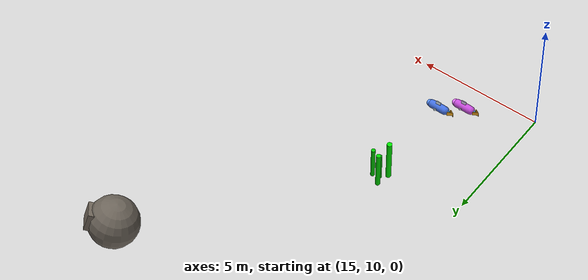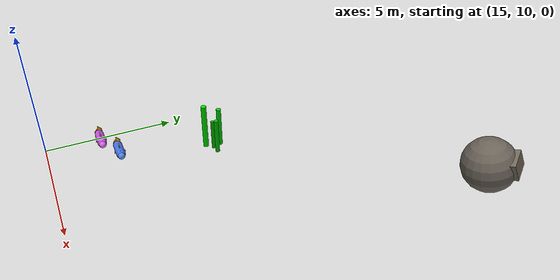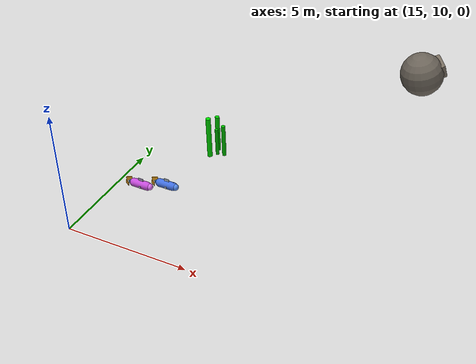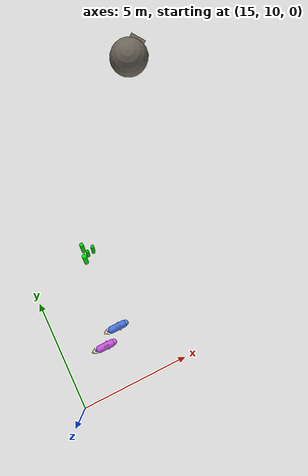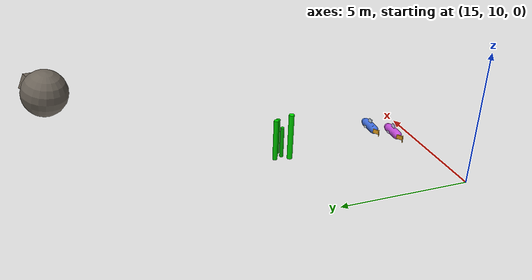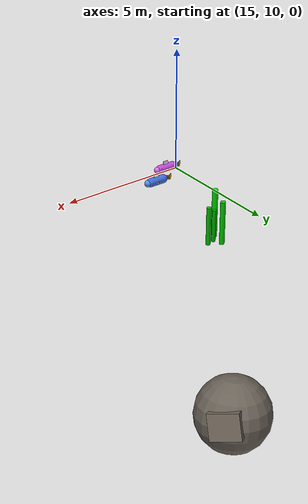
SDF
<sdf version="1.9">
 <world name="ocean_world">
  <model name="rock6">
   <static>true</static>
   <pose>24 24 1.55 0.1 -0.2 0.3</pose>
   <link name="link">
    <inertial><mass>400</mass></inertial>
    <collision name="c1"><geometry><sphere><radius>0.95</radius></sphere></geometry></collision>
    <collision name="c2">
     <pose>0.5 0.15 0.1 0 0.2 0</pose>
     <geometry><box><size>0.95 0.78 0.66</size></box></geometry>
    </collision>
    <collision name="c3">
     <pose>-0.35 -0.2 0.2 0.1 0.4 0</pose>
     <geometry><cylinder><radius>0.34</radius><length>0.82</length></cylinder></geometry>
    </collision>
    <visual name="v1">
     <geometry><sphere><radius>0.98</radius></sphere></geometry>
     <material><ambient>0.42 0.39 0.35 1</ambient><diffuse>0.42 0.39 0.35 1</diffuse></material>
    </visual>
    <visual name="v2">
     <pose>0.48 0.18 0.08 0.2 -0.1 0.3</pose>
     <geometry><box><size>1.00 0.80 0.68</size></box></geometry>
     <material><ambient>0.46 0.42 0.37 1</ambient><diffuse>0.46 0.42 0.37 1</diffuse></material>
    </visual>
    <visual name="v3">
     <pose>-0.35 -0.2 0.22 0.2 0.5 0.1</pose>
     <geometry><cylinder><radius>0.36</radius><length>0.80</length></cylinder></geometry>
     <material><ambient>0.38 0.35 0.32 1</ambient><diffuse>0.38 0.35 0.32 1</diffuse></material>
    </visual>
   </link>
  </model>
  <model name="seaweed33">
   <static>false</static>
   <pose>18.00 16.00 1.10 0 0 0</pose>
   <link name="body33">
    <gravity>false</gravity>
    <inertial><mass>1</mass></inertial>
    <visual name="visual">
     <geometry><cylinder><radius>0.07</radius><length>1.2</length></cylinder></geometry>
     <material><ambient>0 0.72 0 1</ambient><diffuse>0 0.72 0 1</diffuse></material>
    </visual>
   </link>
   <plugin filename="/home/kousik/fish_ai_plugin/build/libFishAI.so" name="FishAI"/>
  </model>
  <model name="seaweed34">
   <static>false</static>
   <pose>18.28 16.06 1.20 0 0 0</pose>
   <link name="body34">
    <gravity>false</gravity>
    <inertial><mass>1</mass></inertial>
    <visual name="visual">
     <geometry><cylinder><radius>0.08</radius><length>1.4</length></cylinder></geometry>
     <material><ambient>0 0.76 0 1</ambient><diffuse>0 0.76 0 1</diffuse></material>
    </visual>
   </link>
   <plugin filename="/home/kousik/fish_ai_plugin/build/libFishAI.so" name="FishAI"/>
  </model>
  <model name="seaweed35">
   <static>false</static>
   <pose>17.88 16.30 1.30 0 0 0</pose>
   <link name="body35">
    <gravity>false</gravity>
    <inertial><mass>1</mass></inertial>
    <visual name="visual">
     <geometry><cylinder><radius>0.09</radius><length>1.6</length></cylinder></geometry>
     <material><ambient>0 0.82 0 1</ambient><diffuse>0 0.82 0 1</diffuse></material>
    </visual>
   </link>
   <plugin filename="/home/kousik/fish_ai_plugin/build/libFishAI.so" name="FishAI"/>
  </model>
  <model name="seaweed36">
   <static>false</static>
   <pose>17.78 15.76 1.40 0 0 0</pose>
   <link name="body36">
    <gravity>false</gravity>
    <inertial><mass>1</mass></inertial>
    <visual name="visual">
     <geometry><cylinder><radius>0.10</radius><length>1.8</length></cylinder></geometry>
     <material><ambient>0 0.88 0 1</ambient><diffuse>0 0.88 0 1</diffuse></material>
    </visual>
   </link>
   <plugin filename="/home/kousik/fish_ai_plugin/build/libFishAI.so" name="FishAI"/>
  </model>
  <model name="fish5">
   <static>false</static>
   <pose>17.0 12.0 1.40 0 0 0</pose>
   <link name="body5">
    <gravity>false</gravity>
    <inertial><mass>5</mass></inertial>
    <collision name="body_collision">
     <pose>0 0 0 0 1.5708 0</pose>
     <geometry><capsule><radius>0.16</radius><length>0.58</length></capsule></geometry>
    </collision>
    <visual name="body_visual">
     <pose>0 0 0 0 1.5708 0</pose>
     <geometry><capsule><radius>0.16</radius><length>0.58</length></capsule></geometry>
     <material><ambient>0.78 0.30 0.86 1</ambient><diffuse>0.78 0.30 0.86 1</diffuse></material>
    </visual>
    <visual name="head_visual">
     <pose>0.38 0 0 0 0 0</pose>
     <geometry><sphere><radius>0.13</radius></sphere></geometry>
     <material><ambient>0.88 0.44 0.96 1</ambient><diffuse>0.88 0.44 0.96 1</diffuse></material>
    </visual>
    <visual name="eye_left">
     <pose>0.44 0.06 0.04 0 0 0</pose>
     <geometry><sphere><radius>0.02</radius></sphere></geometry>
     <material><ambient>0 0 0 1</ambient><diffuse>0 0 0 1</diffuse></material>
    </visual>
    <visual name="eye_right">
     <pose>0.44 -0.06 0.04 0 0 0</pose>
     <geometry><sphere><radius>0.02</radius></sphere></geometry>
     <material><ambient>0 0 0 1</ambient><diffuse>0 0 0 1</diffuse></material>
    </visual>
    <visual name="dorsal_fin">
     <pose>0.02 0 0.20 0.2 0 0</pose>
     <geometry><box><size>0.20 0.03 0.15</size></box></geometry>
     <material><ambient>0.88 0.80 0.98 1</ambient><diffuse>0.88 0.80 0.98 1</diffuse></material>
    </visual>
    <visual name="left_fin">
     <pose>0.04 0.16 -0.02 0 0.3 0.4</pose>
     <geometry><box><size>0.14 0.02 0.08</size></box></geometry>
     <material><ambient>0.88 0.80 0.98 1</ambient><diffuse>0.88 0.80 0.98 1</diffuse></material>
    </visual>
    <visual name="right_fin">
     <pose>0.04 -0.16 -0.02 0 -0.3 -0.4</pose>
     <geometry><box><size>0.14 0.02 0.08</size></box></geometry>
     <material><ambient>0.88 0.80 0.98 1</ambient><diffuse>0.88 0.80 0.98 1</diffuse></material>
    </visual>
   </link>
   <link name="tail5">
    <gravity>false</gravity>
    <inertial><mass>1</mass></inertial>
    <pose>-0.43 0 0 0 0 0</pose>
    <collision name="tail_collision"><geometry><box><size>0.10 0.08 0.12</size></box></geometry></collision>
    <visual name="tail_stem">
     <geometry><box><size>0.12 0.08 0.10</size></box></geometry>
     <material><ambient>0.18 0.47 0.72 1</ambient><diffuse>0.18 0.47 0.72 1</diffuse></material>
    </visual>
    <visual name="tail_top">
     <pose>-0.12 0.07 0.05 0 0 0.55</pose>
     <geometry><box><size>0.22 0.02 0.16</size></box></geometry>
     <material><ambient>0.92 0.63 0.12 1</ambient><diffuse>0.92 0.63 0.12 1</diffuse></material>
    </visual>
    <visual name="tail_bottom">
     <pose>-0.12 -0.07 -0.05 0 0 -0.55</pose>
     <geometry><box><size>0.22 0.02 0.16</size></box></geometry>
     <material><ambient>0.92 0.63 0.12 1</ambient><diffuse>0.92 0.63 0.12 1</diffuse></material>
    </visual>
   </link>
   <joint name="tail_joint5" type="revolute">
    <parent>body5</parent>
    <child>tail5</child>
    <axis>
     <xyz>0 0 1</xyz>
     <limit><lower>-0.8</lower><upper>0.8</upper><effort>5</effort><velocity>5</velocity></limit>
    </axis>
   </joint>
   <plugin filename="/home/kousik/fish_ai_plugin/build/libFishAI.so" name="FishAI"/>
  </model>
  <model name="fish6">
   <static>false</static>
   <pose>17.8 12.5 1.30 0 0 0</pose>
   <link name="body6">
    <gravity>false</gravity>
    <inertial><mass>5</mass></inertial>
    <collision name="body_collision">
     <pose>0 0 0 0 1.5708 0</pose>
     <geometry><capsule><radius>0.16</radius><length>0.58</length></capsule></geometry>
    </collision>
    <visual name="body_visual">
     <pose>0 0 0 0 1.5708 0</pose>
     <geometry><capsule><radius>0.16</radius><length>0.58</length></capsule></geometry>
     <material><ambient>0.26 0.44 0.88 1</ambient><diffuse>0.26 0.44 0.88 1</diffuse></material>
    </visual>
    <visual name="head_visual">
     <pose>0.38 0 0 0 0 0</pose>
     <geometry><sphere><radius>0.13</radius></sphere></geometry>
     <material><ambient>0.34 0.56 0.96 1</ambient><diffuse>0.34 0.56 0.96 1</diffuse></material>
    </visual>
    <visual name="eye_left">
     <pose>0.44 0.06 0.04 0 0 0</pose>
     <geometry><sphere><radius>0.02</radius></sphere></geometry>
     <material><ambient>0 0 0 1</ambient><diffuse>0 0 0 1</diffuse></material>
    </visual>
    <visual name="eye_right">
     <pose>0.44 -0.06 0.04 0 0 0</pose>
     <geometry><sphere><radius>0.02</radius></sphere></geometry>
     <material><ambient>0 0 0 1</ambient><diffuse>0 0 0 1</diffuse></material>
    </visual>
    <visual name="dorsal_fin">
     <pose>0.02 0 0.20 0.2 0 0</pose>
     <geometry><box><size>0.20 0.03 0.15</size></box></geometry>
     <material><ambient>0.86 0.92 0.98 1</ambient><diffuse>0.86 0.92 0.98 1</diffuse></material>
    </visual>
    <visual name="left_fin">
     <pose>0.04 0.16 -0.02 0 0.3 0.4</pose>
     <geometry><box><size>0.14 0.02 0.08</size></box></geometry>
     <material><ambient>0.86 0.92 0.98 1</ambient><diffuse>0.86 0.92 0.98 1</diffuse></material>
    </visual>
    <visual name="right_fin">
     <pose>0.04 -0.16 -0.02 0 -0.3 -0.4</pose>
     <geometry><box><size>0.14 0.02 0.08</size></box></geometry>
     <material><ambient>0.86 0.92 0.98 1</ambient><diffuse>0.86 0.92 0.98 1</diffuse></material>
    </visual>
   </link>
   <link name="tail6">
    <gravity>false</gravity>
    <inertial><mass>1</mass></inertial>
    <pose>-0.43 0 0 0 0 0</pose>
    <collision name="tail_collision"><geometry><box><size>0.10 0.08 0.12</size></box></geometry></collision>
    <visual name="tail_stem">
     <geometry><box><size>0.12 0.08 0.10</size></box></geometry>
     <material><ambient>0.18 0.55 0.80 1</ambient><diffuse>0.18 0.55 0.80 1</diffuse></material>
    </visual>
    <visual name="tail_top">
     <pose>-0.12 0.07 0.05 0 0 0.55</pose>
     <geometry><box><size>0.22 0.02 0.16</size></box></geometry>
     <material><ambient>0.97 0.68 0.13 1</ambient><diffuse>0.97 0.68 0.13 1</diffuse></material>
    </visual>
    <visual name="tail_bottom">
     <pose>-0.12 -0.07 -0.05 0 0 -0.55</pose>
     <geometry><box><size>0.22 0.02 0.16</size></box></geometry>
     <material><ambient>0.97 0.68 0.13 1</ambient><diffuse>0.97 0.68 0.13 1</diffuse></material>
    </visual>
   </link>
   <joint name="tail_joint6" type="revolute">
    <parent>body6</parent>
    <child>tail6</child>
    <axis>
     <xyz>0 0 1</xyz>
     <limit><lower>-0.8</lower><upper>0.8</upper><effort>5</effort><velocity>5</velocity></limit>
    </axis>
   </joint>
   <plugin filename="/home/kousik/fish_ai_plugin/build/libFishAI.so" name="FishAI"/>
  </model>
 </world>
</sdf>
